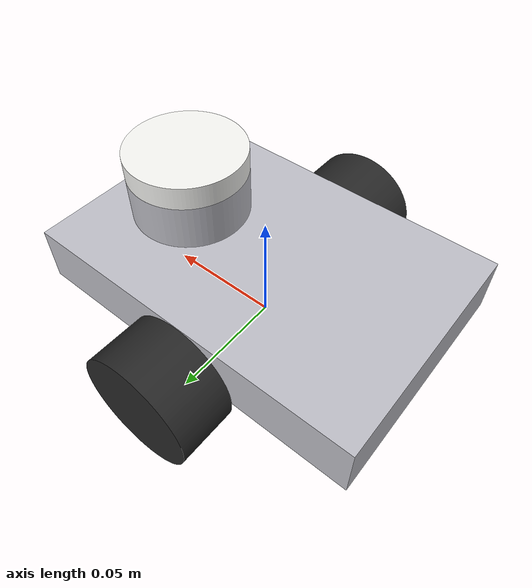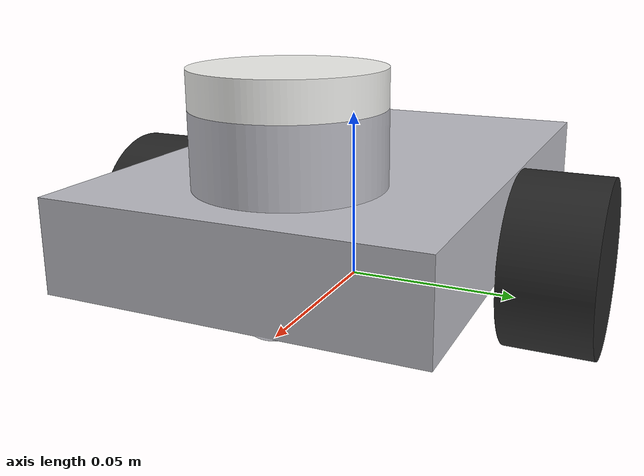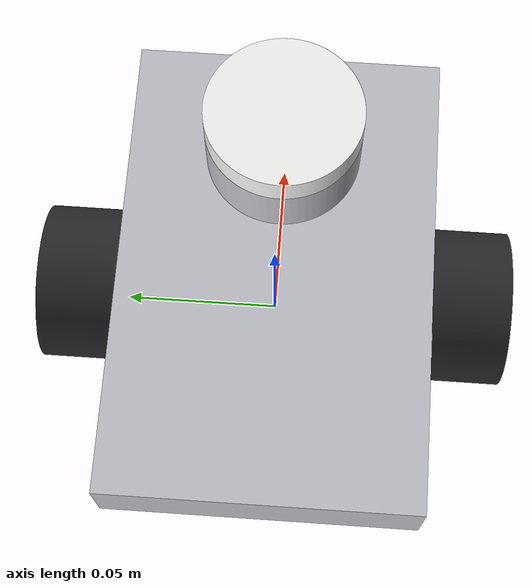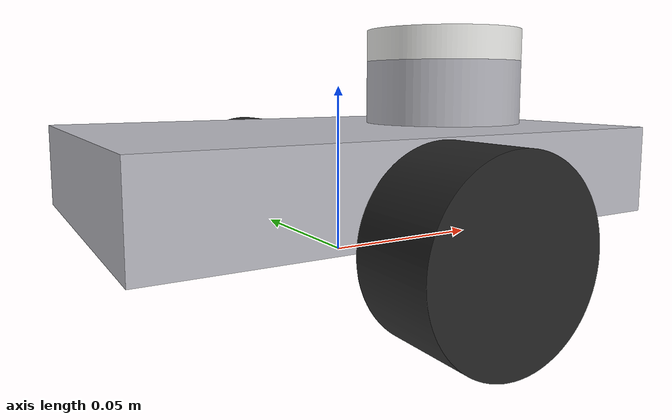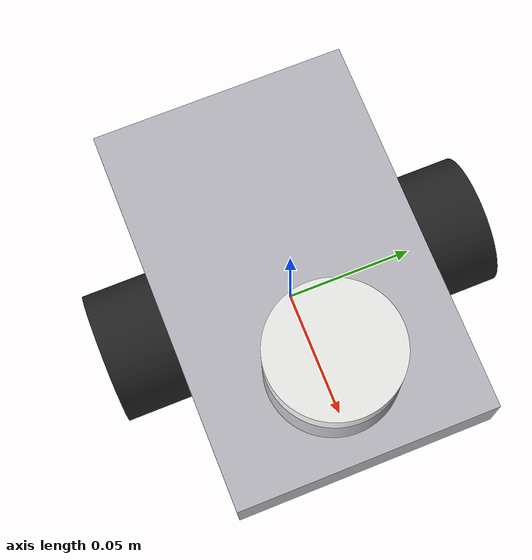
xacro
<?xml version="1.0" ?>
<robot name="mobile2_bot"
  xmlns:xacro="http://www.ros.org/wiki/xacro">
  <xacro:arg name="prefix" default=""/>

  <xacro:macro name="mobile2_bot" params="prefix">

    <xacro:include filename="$(find mobile2_bot_description)/urdf/materials.xacro" />
    <xacro:include filename="$(find mobile2_bot_description)/urdf/mobile2_bot.trans" />
    <xacro:include filename="$(find mobile2_bot_description)/urdf/mobile2_bot.gazebo" />

    <!-- BASE LINK -->
    <link name="${prefix}base_link">
      <inertial>
        <origin xyz="0 0 0.0125" rpy="0 0 0"/>
        <mass value="0.45"/>
        <inertia ixx="0.00038" iyy="0.00087" izz="0.00116" ixy="0.0" iyz="0.0" ixz="0.0"/>
      </inertial>
      <visual>
        <origin xyz="0 0 0" rpy="0 0 0"/>
        <geometry>
          <mesh filename="package://mobile2_bot_description/meshes/base_link.stl" scale="0.001 0.001 0.001"/>
        </geometry>
        <material name="silver"/>
      </visual>
      <collision>
        <origin xyz="0 0 0" rpy="0 0 0"/>
        <geometry>
          <box size="0.15 0.10 0.025"/>
        </geometry>
      </collision>
    </link>

    <!-- RIGHT WHEEL -->
    <link name="${prefix}right_wheel">
      <inertial>
        <origin xyz="0 0 0" rpy="0 0 0"/>
        <mass value="0.045"/>
        <inertia ixx="1.0e-05" iyy="1.4e-05" izz="1.0e-05" ixy="0" iyz="0" ixz="0"/>
      </inertial>
      <visual>
        <origin xyz="0 0 0" rpy="0 0 0"/>
        <geometry>
          <mesh filename="package://mobile2_bot_description/meshes/right_wheel.stl" scale="0.001 0.001 0.001"/>
        </geometry>
        <material name="mobile2_bot_color0"/>
      </visual>
      <collision>
        <origin xyz="0 0 0" rpy="1.5708 0 0"/>
        <geometry>
          <cylinder radius="0.025" length="0.025"/>
        </geometry>
      </collision>
    </link>

    <!-- LEFT WHEEL -->
    <link name="${prefix}left_wheel">
      <inertial>
        <origin xyz="0 0 0" rpy="0 0 0"/>
        <mass value="0.045"/>
        <inertia ixx="1.0e-05" iyy="1.4e-05" izz="1.0e-05" ixy="0" iyz="0" ixz="0"/>
      </inertial>
      <visual>
        <origin xyz="0 0 0" rpy="0 0 0"/>
        <geometry>
          <mesh filename="package://mobile2_bot_description/meshes/left_wheel.stl" scale="0.001 0.001 0.001"/>
        </geometry>
        <material name="mobile2_bot_color0"/>
      </visual>
      <collision>
        <origin xyz="0 0 0" rpy="1.5708 0 0"/>
        <geometry>
          <cylinder radius="0.025" length="0.025"/>
        </geometry>
      </collision>
    </link>

    <!-- LIDAR -->
    <link name="${prefix}lidar">
      <inertial>
        <origin xyz="0 0 0.005" rpy="0 0 0"/>
        <mass value="0.02"/>
        <inertia ixx="3.0e-06" iyy="3.0e-06" izz="7.0e-06" ixy="0" iyz="0" ixz="0"/>
      </inertial>
      <visual>
        <origin xyz="0 0 0" rpy="0 0 0"/>
        <geometry>
          <mesh filename="package://mobile2_bot_description/meshes/lidar.stl" scale="0.001 0.001 0.001"/>
        </geometry>
        <material name="mobile2_bot_color1"/>
      </visual>
      <collision>
        <origin xyz="0 0 0" rpy="0 0 0"/>
        <geometry>
          <mesh filename="package://mobile2_bot_description/meshes/lidar.stl" scale="0.001 0.001 0.001"/>
        </geometry>
      </collision>
    </link>

    <!-- JOINTS -->
    <joint name="${prefix}revolute_1" type="continuous">
      <origin xyz="0.0 -0.05 0.0125" rpy="0 0 0"/>
      <parent link="${prefix}base_link"/>
      <child link="${prefix}right_wheel"/>
      <axis xyz="0 1 0"/>
      <limit effort="10.0" velocity="10.0"/>
    </joint>

    <joint name="${prefix}revolute_2" type="continuous">
      <origin xyz="0.0 0.05 0.0125" rpy="0 0 0"/>
      <parent link="${prefix}base_link"/>
      <child link="${prefix}left_wheel"/>
      <axis xyz="0 1 0"/>
      <limit effort="10.0" velocity="10.0"/>
    </joint>

    <joint name="${prefix}lidar_joint" type="fixed">
      <origin xyz="0.04 0.0 0.058" rpy="0 0 0"/>
      <parent link="${prefix}base_link"/>
      <child link="${prefix}lidar"/>
    </joint>

  </xacro:macro>
  <xacro:mobile2_bot prefix="$(arg prefix)"/>

</robot>

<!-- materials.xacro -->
<robot name="mobile2_bot" xmlns:xacro="http://www.ros.org/wiki/xacro" >

<material name="mobile2_bot_silver">
  <color rgba="0.700 0.700 0.700 1.000"/>
</material>

<material name="mobile2_bot_color0">
  <color rgba="0.153 0.153 0.153 1.0"/>
</material>

<material name="mobile2_bot_color1">
  <color rgba="0.965 0.965 0.953 1.0"/>
</material>

</robot>

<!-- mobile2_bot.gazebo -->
<robot name="mobile2_bot"
  xmlns:xacro="http://www.ros.org/wiki/xacro">
  <xacro:arg name="prefix" default=""/>

  <xacro:property name="body_color" value="Gazebo/Silver" />

  <!--   DIFF DRIVE (NAMESPACED)    -->

  <gazebo>
    <plugin name="${prefix}diff_drive" filename="libgazebo_ros_diff_drive.so">
      <ros>
        <namespace>${prefix}</namespace>

        <remapping>/tf:=/tf</remapping>
        <remapping>/tf_static:=/tf_static</remapping>

      </ros>

      <update_rate>5</update_rate>

      <!-- Joints keep prefix -->
      <left_joint>${prefix}revolute_2</left_joint>
      <right_joint>${prefix}revolute_1</right_joint>

      <wheel_separation>0.10</wheel_separation>
      <wheel_diameter>0.05</wheel_diameter>

      <publish_odom>true</publish_odom>
      <publish_odom_tf>true</publish_odom_tf>

      <publish_wheel_tf>true</publish_wheel_tf>

      <!--FRAME NAMES WITH PREFIX -->
      <odometry_frame>${prefix}odom</odometry_frame>
      <robot_base_frame>${prefix}base_link</robot_base_frame>

      <command_timeout>1.0</command_timeout>
      <max_wheel_torque>10.0</max_wheel_torque>
      <max_wheel_acceleration>5.0</max_wheel_acceleration>
    </plugin>
  </gazebo>

  <!-- Base link and wheels visual/physics -->
  <gazebo reference="${prefix}base_link">
    <material>${body_color}</material>
    <mu1>0.1</mu1>
    <mu2>0.1</mu2>
    <kp>1e6</kp>
    <kd>10.0</kd>
    <self_collide>true</self_collide>
    <gravity>true</gravity>
  </gazebo>

  <gazebo reference="${prefix}right_wheel">
    <material>${body_color}</material>
    <mu1>1500</mu1>
    <mu2>1500</mu2>
    <self_collide>true</self_collide>
  </gazebo>

  <gazebo reference="${prefix}left_wheel">
    <material>${body_color}</material>
    <mu1>1500</mu1>
    <mu2>1500</mu2>
    <self_collide>true</self_collide>
  </gazebo>

  <!--         LIDAR SENSOR          -->

  <gazebo reference="${prefix}lidar">
    <sensor type="ray" name="${prefix}lidar_sensor">
      <always_on>true</always_on>
      <update_rate>5.0</update_rate>
      <visualize>true</visualize>

      <ray>
        <scan>
          <horizontal>
            <samples>360</samples>
            <resolution>1</resolution>
            <min_angle>-1.5708</min_angle>
            <max_angle>1.5708</max_angle>
          </horizontal>
        </scan>
        <range>
          <min>0.12</min>
          <max>12.0</max>
          <resolution>0.01</resolution>
        </range>
        <noise>
          <type>gaussian</type>
          <mean>0.0</mean>
          <stddev>0.01</stddev>
        </noise>
      </ray>

      <plugin name="${prefix}_gazebo_ros_ray_sensor" filename="libgazebo_ros_ray_sensor.so">

        <ros>
          <namespace>${prefix}</namespace>
          <remapping>~/out:=scan</remapping>
        </ros>

        <output_type>sensor_msgs/LaserScan</output_type>

        <!--FRAME NAME WITH PREFIX -->
        <frame_name>${prefix}lidar</frame_name>

        <update_rate>5.0</update_rate>
      </plugin>
    </sensor>
  </gazebo>

</robot>
